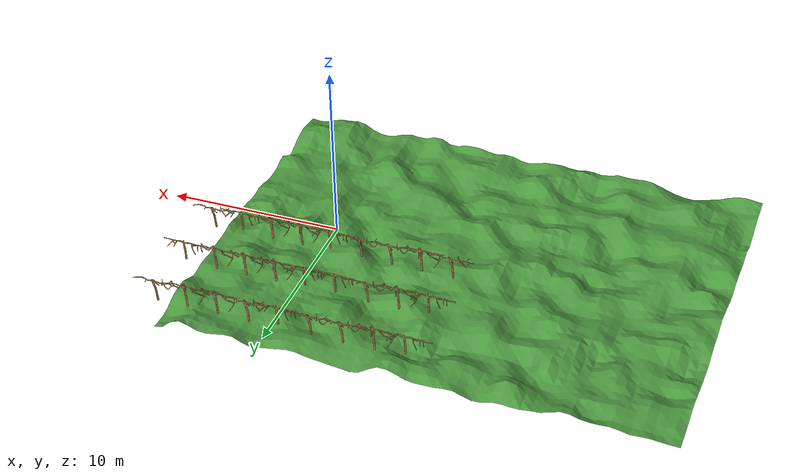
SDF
<sdf version="1.6">
 <world name="default">
  <model name="ground_plane">
   <static>1</static>
   <link name="link">
    <collision name="collision">
     <geometry>
      <mesh><uri>model://Rough_terrain/meshes/rough_terrain.stl</uri><scale>1 1 1</scale></mesh>
     </geometry>
     <surface>
      <contact><collide_bitmask>65535</collide_bitmask></contact>
      <friction><ode><mu>100</mu><mu2>50</mu2></ode></friction>
     </surface>
    </collision>
    <visual name="visual">
     <cast_shadows>0</cast_shadows>
     <geometry>
      <mesh><uri>model://Rough_terrain/meshes/rough_terrain.stl</uri><scale>1 1 1</scale></mesh>
     </geometry>
     <material>
      <script><uri>file://media/materials/scripts/gazebo.material</uri><name>Gazebo/Grass</name></script>
     </material>
    </visual>
   </link>
  </model>
  <model name="4_1">
   <static>1</static>
   <link name="link">
    <collision name="collision">
     <geometry>
      <mesh><uri>model://Vine3/meshes/mega_cloud7_processed.stl</uri><scale>1 1 1</scale></mesh>
     </geometry>
     <surface><friction><ode><mu>100</mu><mu2>50</mu2></ode></friction></surface>
    </collision>
    <visual name="visual">
     <geometry>
      <mesh><uri>model://Vine3/meshes/mega_cloud7_processed.stl</uri><scale>1 1 1</scale></mesh>
     </geometry>
     <material>
      <script><uri>file://media/materials/scripts/gazebo.material</uri><name>Gazebo/Wood</name></script>
     </material>
    </visual>
   </link>
   <pose>-7.50000 0.75000 0.65000 0 0 1.57080</pose>
  </model>
  <model name="4_2">
   <static>1</static>
   <link name="link">
    <collision name="collision">
     <geometry>
      <mesh><uri>model://Vine1/meshes/mega_cloud3_processed.stl</uri><scale>1 1 1</scale></mesh>
     </geometry>
     <surface><friction><ode><mu>100</mu><mu2>50</mu2></ode></friction></surface>
    </collision>
    <visual name="visual">
     <geometry>
      <mesh><uri>model://Vine1/meshes/mega_cloud3_processed.stl</uri><scale>1 1 1</scale></mesh>
     </geometry>
     <material>
      <script><uri>file://media/materials/scripts/gazebo.material</uri><name>Gazebo/Wood</name></script>
     </material>
    </visual>
   </link>
   <pose>-5.74000 0.75000 0.65000 0 0 1.57080</pose>
  </model>
  <model name="4_3">
   <static>1</static>
   <link name="link">
    <collision name="collision">
     <geometry>
      <mesh><uri>model://Vine3/meshes/mega_cloud7_processed.stl</uri><scale>1 1 1</scale></mesh>
     </geometry>
     <surface><friction><ode><mu>100</mu><mu2>50</mu2></ode></friction></surface>
    </collision>
    <visual name="visual">
     <geometry>
      <mesh><uri>model://Vine3/meshes/mega_cloud7_processed.stl</uri><scale>1 1 1</scale></mesh>
     </geometry>
     <material>
      <script><uri>file://media/materials/scripts/gazebo.material</uri><name>Gazebo/Wood</name></script>
     </material>
    </visual>
   </link>
   <pose>-3.98000 0.75000 0.65000 0 0 1.57080</pose>
  </model>
  <model name="4_4">
   <static>1</static>
   <link name="link">
    <collision name="collision">
     <geometry>
      <mesh><uri>model://Vine3/meshes/mega_cloud7_processed.stl</uri><scale>1 1 1</scale></mesh>
     </geometry>
     <surface><friction><ode><mu>100</mu><mu2>50</mu2></ode></friction></surface>
    </collision>
    <visual name="visual">
     <geometry>
      <mesh><uri>model://Vine3/meshes/mega_cloud7_processed.stl</uri><scale>1 1 1</scale></mesh>
     </geometry>
     <material>
      <script><uri>file://media/materials/scripts/gazebo.material</uri><name>Gazebo/Wood</name></script>
     </material>
    </visual>
   </link>
   <pose>-2.22000 0.75000 0.65000 0 0 1.57080</pose>
  </model>
  <model name="4_5">
   <static>1</static>
   <link name="link">
    <collision name="collision">
     <geometry>
      <mesh><uri>model://Vine2/meshes/mega_cloud16_processed.stl</uri><scale>1 1 1</scale></mesh>
     </geometry>
     <surface><friction><ode><mu>100</mu><mu2>50</mu2></ode></friction></surface>
    </collision>
    <visual name="visual">
     <geometry>
      <mesh><uri>model://Vine2/meshes/mega_cloud16_processed.stl</uri><scale>1 1 1</scale></mesh>
     </geometry>
     <material>
      <script><uri>file://media/materials/scripts/gazebo.material</uri><name>Gazebo/Wood</name></script>
     </material>
    </visual>
   </link>
   <pose>-0.46000 0.75000 0.65000 0 0 1.57080</pose>
  </model>
  <model name="4_6">
   <static>1</static>
   <link name="link">
    <collision name="collision">
     <geometry>
      <mesh><uri>model://Vine1/meshes/mega_cloud3_processed.stl</uri><scale>1 1 1</scale></mesh>
     </geometry>
     <surface><friction><ode><mu>100</mu><mu2>50</mu2></ode></friction></surface>
    </collision>
    <visual name="visual">
     <geometry>
      <mesh><uri>model://Vine1/meshes/mega_cloud3_processed.stl</uri><scale>1 1 1</scale></mesh>
     </geometry>
     <material>
      <script><uri>file://media/materials/scripts/gazebo.material</uri><name>Gazebo/Wood</name></script>
     </material>
    </visual>
   </link>
   <pose>1.30000 0.75000 0.65000 0 0 1.57080</pose>
  </model>
  <model name="4_7">
   <static>1</static>
   <link name="link">
    <collision name="collision">
     <geometry>
      <mesh><uri>model://Vine1/meshes/mega_cloud3_processed.stl</uri><scale>1 1 1</scale></mesh>
     </geometry>
     <surface><friction><ode><mu>100</mu><mu2>50</mu2></ode></friction></surface>
    </collision>
    <visual name="visual">
     <geometry>
      <mesh><uri>model://Vine1/meshes/mega_cloud3_processed.stl</uri><scale>1 1 1</scale></mesh>
     </geometry>
     <material>
      <script><uri>file://media/materials/scripts/gazebo.material</uri><name>Gazebo/Wood</name></script>
     </material>
    </visual>
   </link>
   <pose>3.06000 0.75000 0.65000 0 0 1.57080</pose>
  </model>
  <model name="4_8">
   <static>1</static>
   <link name="link">
    <collision name="collision">
     <geometry>
      <mesh><uri>model://Vine2/meshes/mega_cloud16_processed.stl</uri><scale>1 1 1</scale></mesh>
     </geometry>
     <surface><friction><ode><mu>100</mu><mu2>50</mu2></ode></friction></surface>
    </collision>
    <visual name="visual">
     <geometry>
      <mesh><uri>model://Vine2/meshes/mega_cloud16_processed.stl</uri><scale>1 1 1</scale></mesh>
     </geometry>
     <material>
      <script><uri>file://media/materials/scripts/gazebo.material</uri><name>Gazebo/Wood</name></script>
     </material>
    </visual>
   </link>
   <pose>4.82000 0.75000 0.65000 0 0 1.57080</pose>
  </model>
  <model name="4_9">
   <static>1</static>
   <link name="link">
    <collision name="collision">
     <geometry>
      <mesh><uri>model://Vine3/meshes/mega_cloud7_processed.stl</uri><scale>1 1 1</scale></mesh>
     </geometry>
     <surface><friction><ode><mu>100</mu><mu2>50</mu2></ode></friction></surface>
    </collision>
    <visual name="visual">
     <geometry>
      <mesh><uri>model://Vine3/meshes/mega_cloud7_processed.stl</uri><scale>1 1 1</scale></mesh>
     </geometry>
     <material>
      <script><uri>file://media/materials/scripts/gazebo.material</uri><name>Gazebo/Wood</name></script>
     </material>
    </visual>
   </link>
   <pose>6.58000 0.75000 0.65000 0 0 1.57080</pose>
  </model>
  <model name="5_1">
   <static>1</static>
   <link name="link">
    <collision name="collision">
     <geometry>
      <mesh><uri>model://Vine2/meshes/mega_cloud16_processed.stl</uri><scale>1 1 1</scale></mesh>
     </geometry>
     <surface><friction><ode><mu>100</mu><mu2>50</mu2></ode></friction></surface>
    </collision>
    <visual name="visual">
     <geometry>
      <mesh><uri>model://Vine2/meshes/mega_cloud16_processed.stl</uri><scale>1 1 1</scale></mesh>
     </geometry>
     <material>
      <script><uri>file://media/materials/scripts/gazebo.material</uri><name>Gazebo/Wood</name></script>
     </material>
    </visual>
   </link>
   <pose>-7.50000 4.25000 0.65000 0 0 1.57080</pose>
  </model>
  <model name="5_2">
   <static>1</static>
   <link name="link">
    <collision name="collision">
     <geometry>
      <mesh><uri>model://Vine1/meshes/mega_cloud3_processed.stl</uri><scale>1 1 1</scale></mesh>
     </geometry>
     <surface><friction><ode><mu>100</mu><mu2>50</mu2></ode></friction></surface>
    </collision>
    <visual name="visual">
     <geometry>
      <mesh><uri>model://Vine1/meshes/mega_cloud3_processed.stl</uri><scale>1 1 1</scale></mesh>
     </geometry>
     <material>
      <script><uri>file://media/materials/scripts/gazebo.material</uri><name>Gazebo/Wood</name></script>
     </material>
    </visual>
   </link>
   <pose>-5.74000 4.25000 0.65000 0 0 1.57080</pose>
  </model>
  <model name="5_3">
   <static>1</static>
   <link name="link">
    <collision name="collision">
     <geometry>
      <mesh><uri>model://Vine3/meshes/mega_cloud7_processed.stl</uri><scale>1 1 1</scale></mesh>
     </geometry>
     <surface><friction><ode><mu>100</mu><mu2>50</mu2></ode></friction></surface>
    </collision>
    <visual name="visual">
     <geometry>
      <mesh><uri>model://Vine3/meshes/mega_cloud7_processed.stl</uri><scale>1 1 1</scale></mesh>
     </geometry>
     <material>
      <script><uri>file://media/materials/scripts/gazebo.material</uri><name>Gazebo/Wood</name></script>
     </material>
    </visual>
   </link>
   <pose>-3.98000 4.25000 0.65000 0 0 1.57080</pose>
  </model>
  <model name="5_4">
   <static>1</static>
   <link name="link">
    <collision name="collision">
     <geometry>
      <mesh><uri>model://Vine2/meshes/mega_cloud16_processed.stl</uri><scale>1 1 1</scale></mesh>
     </geometry>
     <surface><friction><ode><mu>100</mu><mu2>50</mu2></ode></friction></surface>
    </collision>
    <visual name="visual">
     <geometry>
      <mesh><uri>model://Vine2/meshes/mega_cloud16_processed.stl</uri><scale>1 1 1</scale></mesh>
     </geometry>
     <material>
      <script><uri>file://media/materials/scripts/gazebo.material</uri><name>Gazebo/Wood</name></script>
     </material>
    </visual>
   </link>
   <pose>-2.22000 4.25000 0.65000 0 0 1.57080</pose>
  </model>
  <model name="5_5">
   <static>1</static>
   <link name="link">
    <collision name="collision">
     <geometry>
      <mesh><uri>model://Vine2/meshes/mega_cloud16_processed.stl</uri><scale>1 1 1</scale></mesh>
     </geometry>
     <surface><friction><ode><mu>100</mu><mu2>50</mu2></ode></friction></surface>
    </collision>
    <visual name="visual">
     <geometry>
      <mesh><uri>model://Vine2/meshes/mega_cloud16_processed.stl</uri><scale>1 1 1</scale></mesh>
     </geometry>
     <material>
      <script><uri>file://media/materials/scripts/gazebo.material</uri><name>Gazebo/Wood</name></script>
     </material>
    </visual>
   </link>
   <pose>-0.46000 4.25000 0.65000 0 0 1.57080</pose>
  </model>
  <model name="5_6">
   <static>1</static>
   <link name="link">
    <collision name="collision">
     <geometry>
      <mesh><uri>model://Vine1/meshes/mega_cloud3_processed.stl</uri><scale>1 1 1</scale></mesh>
     </geometry>
     <surface><friction><ode><mu>100</mu><mu2>50</mu2></ode></friction></surface>
    </collision>
    <visual name="visual">
     <geometry>
      <mesh><uri>model://Vine1/meshes/mega_cloud3_processed.stl</uri><scale>1 1 1</scale></mesh>
     </geometry>
     <material>
      <script><uri>file://media/materials/scripts/gazebo.material</uri><name>Gazebo/Wood</name></script>
     </material>
    </visual>
   </link>
   <pose>1.30000 4.25000 0.65000 0 0 1.57080</pose>
  </model>
  <model name="5_7">
   <static>1</static>
   <link name="link">
    <collision name="collision">
     <geometry>
      <mesh><uri>model://Vine1/meshes/mega_cloud3_processed.stl</uri><scale>1 1 1</scale></mesh>
     </geometry>
     <surface><friction><ode><mu>100</mu><mu2>50</mu2></ode></friction></surface>
    </collision>
    <visual name="visual">
     <geometry>
      <mesh><uri>model://Vine1/meshes/mega_cloud3_processed.stl</uri><scale>1 1 1</scale></mesh>
     </geometry>
     <material>
      <script><uri>file://media/materials/scripts/gazebo.material</uri><name>Gazebo/Wood</name></script>
     </material>
    </visual>
   </link>
   <pose>3.06000 4.25000 0.65000 0 0 1.57080</pose>
  </model>
  <model name="5_8">
   <static>1</static>
   <link name="link">
    <collision name="collision">
     <geometry>
      <mesh><uri>model://Vine1/meshes/mega_cloud3_processed.stl</uri><scale>1 1 1</scale></mesh>
     </geometry>
     <surface><friction><ode><mu>100</mu><mu2>50</mu2></ode></friction></surface>
    </collision>
    <visual name="visual">
     <geometry>
      <mesh><uri>model://Vine1/meshes/mega_cloud3_processed.stl</uri><scale>1 1 1</scale></mesh>
     </geometry>
     <material>
      <script><uri>file://media/materials/scripts/gazebo.material</uri><name>Gazebo/Wood</name></script>
     </material>
    </visual>
   </link>
   <pose>4.82000 4.25000 0.65000 0 0 1.57080</pose>
  </model>
  <model name="5_9">
   <static>1</static>
   <link name="link">
    <collision name="collision">
     <geometry>
      <mesh><uri>model://Vine2/meshes/mega_cloud16_processed.stl</uri><scale>1 1 1</scale></mesh>
     </geometry>
     <surface><friction><ode><mu>100</mu><mu2>50</mu2></ode></friction></surface>
    </collision>
    <visual name="visual">
     <geometry>
      <mesh><uri>model://Vine2/meshes/mega_cloud16_processed.stl</uri><scale>1 1 1</scale></mesh>
     </geometry>
     <material>
      <script><uri>file://media/materials/scripts/gazebo.material</uri><name>Gazebo/Wood</name></script>
     </material>
    </visual>
   </link>
   <pose>6.58000 4.25000 0.65000 0 0 1.57080</pose>
  </model>
  <model name="6_1">
   <static>1</static>
   <link name="link">
    <collision name="collision">
     <geometry>
      <mesh><uri>model://Vine2/meshes/mega_cloud16_processed.stl</uri><scale>1 1 1</scale></mesh>
     </geometry>
     <surface><friction><ode><mu>100</mu><mu2>50</mu2></ode></friction></surface>
    </collision>
    <visual name="visual">
     <geometry>
      <mesh><uri>model://Vine2/meshes/mega_cloud16_processed.stl</uri><scale>1 1 1</scale></mesh>
     </geometry>
     <material>
      <script><uri>file://media/materials/scripts/gazebo.material</uri><name>Gazebo/Wood</name></script>
     </material>
    </visual>
   </link>
   <pose>-7.50000 7.75000 0.65000 0 0 1.57080</pose>
  </model>
  <model name="6_2">
   <static>1</static>
   <link name="link">
    <collision name="collision">
     <geometry>
      <mesh><uri>model://Vine1/meshes/mega_cloud3_processed.stl</uri><scale>1 1 1</scale></mesh>
     </geometry>
     <surface><friction><ode><mu>100</mu><mu2>50</mu2></ode></friction></surface>
    </collision>
    <visual name="visual">
     <geometry>
      <mesh><uri>model://Vine1/meshes/mega_cloud3_processed.stl</uri><scale>1 1 1</scale></mesh>
     </geometry>
     <material>
      <script><uri>file://media/materials/scripts/gazebo.material</uri><name>Gazebo/Wood</name></script>
     </material>
    </visual>
   </link>
   <pose>-5.74000 7.75000 0.65000 0 0 1.57080</pose>
  </model>
  <model name="6_3">
   <static>1</static>
   <link name="link">
    <collision name="collision">
     <geometry>
      <mesh><uri>model://Vine3/meshes/mega_cloud7_processed.stl</uri><scale>1 1 1</scale></mesh>
     </geometry>
     <surface><friction><ode><mu>100</mu><mu2>50</mu2></ode></friction></surface>
    </collision>
    <visual name="visual">
     <geometry>
      <mesh><uri>model://Vine3/meshes/mega_cloud7_processed.stl</uri><scale>1 1 1</scale></mesh>
     </geometry>
     <material>
      <script><uri>file://media/materials/scripts/gazebo.material</uri><name>Gazebo/Wood</name></script>
     </material>
    </visual>
   </link>
   <pose>-3.98000 7.75000 0.65000 0 0 1.57080</pose>
  </model>
  <model name="6_4">
   <static>1</static>
   <link name="link">
    <collision name="collision">
     <geometry>
      <mesh><uri>model://Vine3/meshes/mega_cloud7_processed.stl</uri><scale>1 1 1</scale></mesh>
     </geometry>
     <surface><friction><ode><mu>100</mu><mu2>50</mu2></ode></friction></surface>
    </collision>
    <visual name="visual">
     <geometry>
      <mesh><uri>model://Vine3/meshes/mega_cloud7_processed.stl</uri><scale>1 1 1</scale></mesh>
     </geometry>
     <material>
      <script><uri>file://media/materials/scripts/gazebo.material</uri><name>Gazebo/Wood</name></script>
     </material>
    </visual>
   </link>
   <pose>-2.22000 7.75000 0.65000 0 0 1.57080</pose>
  </model>
  <model name="6_5">
   <static>1</static>
   <link name="link">
    <collision name="collision">
     <geometry>
      <mesh><uri>model://Vine2/meshes/mega_cloud16_processed.stl</uri><scale>1 1 1</scale></mesh>
     </geometry>
     <surface><friction><ode><mu>100</mu><mu2>50</mu2></ode></friction></surface>
    </collision>
    <visual name="visual">
     <geometry>
      <mesh><uri>model://Vine2/meshes/mega_cloud16_processed.stl</uri><scale>1 1 1</scale></mesh>
     </geometry>
     <material>
      <script><uri>file://media/materials/scripts/gazebo.material</uri><name>Gazebo/Wood</name></script>
     </material>
    </visual>
   </link>
   <pose>-0.46000 7.75000 0.65000 0 0 1.57080</pose>
  </model>
  <model name="6_6">
   <static>1</static>
   <link name="link">
    <collision name="collision">
     <geometry>
      <mesh><uri>model://Vine3/meshes/mega_cloud7_processed.stl</uri><scale>1 1 1</scale></mesh>
     </geometry>
     <surface><friction><ode><mu>100</mu><mu2>50</mu2></ode></friction></surface>
    </collision>
    <visual name="visual">
     <geometry>
      <mesh><uri>model://Vine3/meshes/mega_cloud7_processed.stl</uri><scale>1 1 1</scale></mesh>
     </geometry>
     <material>
      <script><uri>file://media/materials/scripts/gazebo.material</uri><name>Gazebo/Wood</name></script>
     </material>
    </visual>
   </link>
   <pose>1.30000 7.75000 0.65000 0 0 1.57080</pose>
  </model>
  <model name="6_7">
   <static>1</static>
   <link name="link">
    <collision name="collision">
     <geometry>
      <mesh><uri>model://Vine1/meshes/mega_cloud3_processed.stl</uri><scale>1 1 1</scale></mesh>
     </geometry>
     <surface><friction><ode><mu>100</mu><mu2>50</mu2></ode></friction></surface>
    </collision>
    <visual name="visual">
     <geometry>
      <mesh><uri>model://Vine1/meshes/mega_cloud3_processed.stl</uri><scale>1 1 1</scale></mesh>
     </geometry>
     <material>
      <script><uri>file://media/materials/scripts/gazebo.material</uri><name>Gazebo/Wood</name></script>
     </material>
    </visual>
   </link>
   <pose>3.06000 7.75000 0.65000 0 0 1.57080</pose>
  </model>
  <model name="6_8">
   <static>1</static>
   <link name="link">
    <collision name="collision">
     <geometry>
      <mesh><uri>model://Vine1/meshes/mega_cloud3_processed.stl</uri><scale>1 1 1</scale></mesh>
     </geometry>
     <surface><friction><ode><mu>100</mu><mu2>50</mu2></ode></friction></surface>
    </collision>
    <visual name="visual">
     <geometry>
      <mesh><uri>model://Vine1/meshes/mega_cloud3_processed.stl</uri><scale>1 1 1</scale></mesh>
     </geometry>
     <material>
      <script><uri>file://media/materials/scripts/gazebo.material</uri><name>Gazebo/Wood</name></script>
     </material>
    </visual>
   </link>
   <pose>4.82000 7.75000 0.65000 0 0 1.57080</pose>
  </model>
  <model name="6_9">
   <static>1</static>
   <link name="link">
    <collision name="collision">
     <geometry>
      <mesh><uri>model://Vine3/meshes/mega_cloud7_processed.stl</uri><scale>1 1 1</scale></mesh>
     </geometry>
     <surface><friction><ode><mu>100</mu><mu2>50</mu2></ode></friction></surface>
    </collision>
    <visual name="visual">
     <geometry>
      <mesh><uri>model://Vine3/meshes/mega_cloud7_processed.stl</uri><scale>1 1 1</scale></mesh>
     </geometry>
     <material>
      <script><uri>file://media/materials/scripts/gazebo.material</uri><name>Gazebo/Wood</name></script>
     </material>
    </visual>
   </link>
   <pose>6.58000 7.75000 0.65000 0 0 1.57080</pose>
  </model>
 </world>
</sdf>
